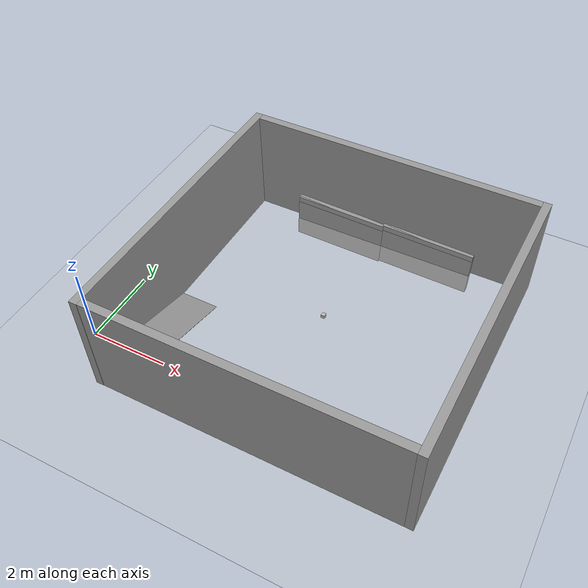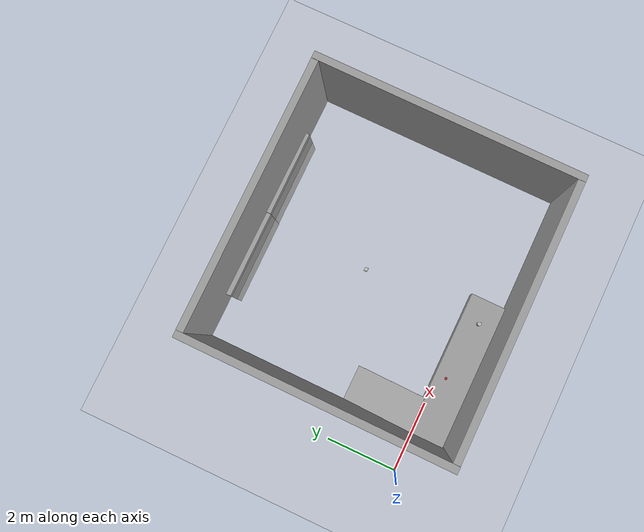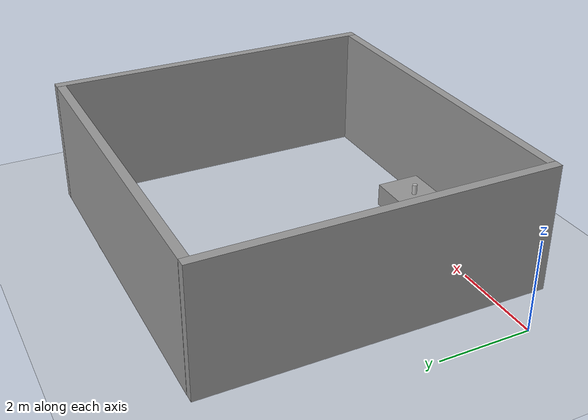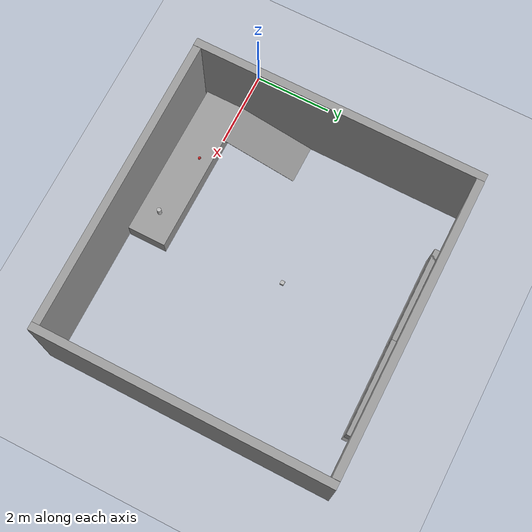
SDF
<sdf version="1.7">
 <world name="default">
  <light name="sun" type="directional">
   <pose>0 0 10 0 -0 0</pose>
   <diffuse>0.8 0.8 0.8 1</diffuse>
   <specular>0.2 0.2 0.2 1</specular>
   <attenuation>
    <range>1000</range>
    <constant>0.9</constant>
    <linear>0.01</linear>
    <quadratic>0.001</quadratic>
   </attenuation>
   <direction>-0.5 0.1 -0.9</direction>
   <spot><inner_angle>0</inner_angle><outer_angle>0</outer_angle><falloff>0</falloff></spot>
  </light>
  <model name="ground_plane">
   <static>1</static>
   <link name="link">
    <collision name="collision">
     <geometry><plane><normal>0 0 1</normal><size>100 100</size></plane></geometry>
     <surface><friction><ode><mu>100</mu><mu2>50</mu2></ode></friction></surface>
    </collision>
    <visual name="visual">
     <cast_shadows>0</cast_shadows>
     <geometry><plane><normal>0 0 1</normal><size>100 100</size></plane></geometry>
     <material>
      <script><uri>file://media/materials/scripts/gazebo.material</uri><name>Gazebo/Grey</name></script>
     </material>
    </visual>
   </link>
  </model>
  <gravity>0 0 -9.8</gravity>
  <magnetic_field>6e-06 2.3e-05 -4.2e-05</magnetic_field>
  <atmosphere type="adiabatic"/>
  <physics type="ode">
   <max_step_size>0.001</max_step_size>
   <real_time_factor>1</real_time_factor>
   <real_time_update_rate>1000</real_time_update_rate>
  </physics>
  <scene><ambient>0.4 0.4 0.4 1</ambient><background>0.7 0.7 0.7 1</background><shadows>1</shadows></scene>
  <audio><device>default</device></audio>
  <spherical_coordinates>
   <surface_model>EARTH_WGS84</surface_model>
   <latitude_deg>0</latitude_deg>
   <longitude_deg>0</longitude_deg>
   <elevation>0</elevation>
   <heading_deg>0</heading_deg>
  </spherical_coordinates>
  <model name="beer">
   <link name="link">
    <pose>0 0 0.115 0 -0 0</pose>
    <inertial>
     <mass>0.39</mass>
     <inertia><ixx>0.00058</ixx><ixy>0</ixy><ixz>0</ixz><iyy>0.00058</iyy><iyz>0</iyz><izz>0.00019</izz></inertia>
    </inertial>
    <collision name="collision">
     <geometry><cylinder><radius>0.055</radius><length>0.23</length></cylinder></geometry>
    </collision>
    <visual name="visual">
     <geometry><cylinder><radius>0.055</radius><length>0.23</length></cylinder></geometry>
     <material>
      <script>
       <uri>model://beer/materials/scripts</uri>
       <uri>model://beer/materials/textures</uri>
       <name>Beer/Diffuse</name>
      </script>
     </material>
    </visual>
   </link>
   <pose>4.57068 -0.401575 0.512954 -6e-05 -7.7e-05 2.20967</pose>
  </model>
  <model name="cricket_ball">
   <link name="link">
    <pose>0 0 0.0375 0 -0 0</pose>
    <inertial>
     <mass>0.1467</mass>
     <inertia>
      <ixx>8.25187e-05</ixx>
      <ixy>0</ixy>
      <ixz>0</ixz>
      <iyy>8.25187e-05</iyy>
      <iyz>0</iyz>
      <izz>8.25187e-05</izz>
     </inertia>
    </inertial>
    <collision name="collision">
     <geometry><sphere><radius>0.0375</radius></sphere></geometry>
     <surface>
      <contact>
       <poissons_ratio>0.347</poissons_ratio>
       <elastic_modulus>8.8e+09</elastic_modulus>
       <ode><kp>100000</kp><kd>100</kd><max_vel>100</max_vel><min_depth>0.001</min_depth></ode>
      </contact>
      <friction>
       <torsional>
        <coefficient>1</coefficient>
        <use_patch_radius>0</use_patch_radius>
        <surface_radius>0.01</surface_radius>
       </torsional>
      </friction>
     </surface>
    </collision>
    <visual name="visual">
     <geometry><sphere><radius>0.0375</radius></sphere></geometry>
     <material>
      <script><uri>file://media/materials/scripts/gazebo.material</uri><name>Gazebo/Red</name></script>
     </material>
    </visual>
    <velocity_decay><linear>0</linear><angular>0.005</angular></velocity_decay>
   </link>
   <pose>2.86024 -0.192828 0.587805 3.07543 -0.052803 -0.932772</pose>
  </model>
  <model name="label_wall_0">
   <pose>2.3839 7.82373 0.019778 -2.10118 1.52018 -2.09374</pose>
   <link name="Wall_0">
    <collision name="Wall_0_Collision">
     <geometry><box><size>1.25 0.15 2.5</size></box></geometry>
     <pose>0 0 1.25 0 -0 0</pose>
    </collision>
    <visual name="Wall_0_Visual">
     <pose>0 0 1.25 0 -0 0</pose>
     <geometry><box><size>1.25 0.15 2.5</size></box></geometry>
     <material>
      <script><uri>file://media/materials/scripts/gazebo.material</uri><name>Gazebo/Grey</name></script>
      <ambient>1 1 1 1</ambient>
     </material>
     <meta><layer>0</layer></meta>
    </visual>
    <pose>-0 -1.7475 0 0 -0 3.14159</pose>
   </link>
   <link name="Wall_1">
    <collision name="Wall_1_Collision">
     <geometry><box><size>0.15 0.15 2.5</size></box></geometry>
     <pose>0 0 1.25 0 -0 0</pose>
    </collision>
    <visual name="Wall_1_Visual">
     <pose>0 0 1.25 0 -0 0</pose>
     <geometry><box><size>0.15 0.15 2.5</size></box></geometry>
     <material>
      <script><uri>file://media/materials/scripts/gazebo.material</uri><name>Gazebo/Grey</name></script>
      <ambient>1 1 1 1</ambient>
     </material>
     <meta><layer>0</layer></meta>
    </visual>
    <pose>-0.55 -1.7475 0 0 -0 0</pose>
   </link>
   <static>1</static>
  </model>
  <model name="grey_wall">
   <static>1</static>
   <link name="link">
    <pose>0 0 1.4 0 -0 0</pose>
    <collision name="collision"><geometry><box><size>7.5 0.2 2.8</size></box></geometry></collision>
    <visual name="visual">
     <cast_shadows>0</cast_shadows>
     <geometry><box><size>7.5 0.2 2.8</size></box></geometry>
     <material>
      <script>
       <uri>model://grey_wall/materials/scripts</uri>
       <uri>model://grey_wall/materials/textures</uri>
       <name>vrc/grey_wall</name>
      </script>
     </material>
    </visual>
   </link>
   <pose>4.93932 6.2718 0 0 -0 0</pose>
  </model>
  <model name="camera">
   <pose>4.68663 3.05019 0.05 0 -0 1.58455</pose>
   <link name="link">
    <inertial>
     <mass>0.1</mass>
     <inertia>
      <ixx>0.000166667</ixx>
      <iyy>0.000166667</iyy>
      <izz>0.000166667</izz>
      <ixy>0</ixy>
      <ixz>0</ixz>
      <iyz>0</iyz>
     </inertia>
    </inertial>
    <collision name="collision"><geometry><box><size>0.1 0.1 0.1</size></box></geometry></collision>
    <visual name="visual"><geometry><box><size>0.1 0.1 0.1</size></box></geometry></visual>
    <sensor name="camera" type="camera">
     <camera>
      <horizontal_fov>1.047</horizontal_fov>
      <image><width>320</width><height>240</height></image>
      <clip><near>0.1</near><far>100</far></clip>
     </camera>
     <always_on>1</always_on>
     <update_rate>30</update_rate>
     <visualize>1</visualize>
     <plugin name="camera_controller" filename="libgazebo_ros_camera.so">
      <robotNamespace>/custom_robot</robotNamespace>
      <camera_name>custom_camera</camera_name>
      <image_topic_name>camera/image_raw</image_topic_name>
      <camera_info_topic_name>camera/camera_info</camera_info_topic_name>
     </plugin>
    </sensor>
   </link>
  </model>
  <model name="label_wall_0_clone">
   <pose>4.88064 7.84317 0.001873 -2.10118 1.52018 -2.09374</pose>
   <link name="Wall_0">
    <collision name="Wall_0_Collision">
     <geometry><box><size>1.25 0.15 2.5</size></box></geometry>
     <pose>0 0 1.25 0 -0 0</pose>
    </collision>
    <visual name="Wall_0_Visual">
     <pose>0 0 1.25 0 -0 0</pose>
     <geometry><box><size>1.25 0.15 2.5</size></box></geometry>
     <material>
      <script><uri>file://media/materials/scripts/gazebo.material</uri><name>Gazebo/Grey</name></script>
      <ambient>1 1 1 1</ambient>
     </material>
     <meta><layer>0</layer></meta>
    </visual>
    <pose>-0 -1.7475 0 0 -0 3.14159</pose>
   </link>
   <link name="Wall_1">
    <collision name="Wall_1_Collision">
     <geometry><box><size>0.15 0.15 2.5</size></box></geometry>
     <pose>0 0 1.25 0 -0 0</pose>
    </collision>
    <visual name="Wall_1_Visual">
     <pose>0 0 1.25 0 -0 0</pose>
     <geometry><box><size>0.15 0.15 2.5</size></box></geometry>
     <material>
      <script><uri>file://media/materials/scripts/gazebo.material</uri><name>Gazebo/Grey</name></script>
      <ambient>1 1 1 1</ambient>
     </material>
     <meta><layer>0</layer></meta>
    </visual>
    <pose>-0.55 -1.7475 0 0 -0 0</pose>
   </link>
   <static>1</static>
  </model>
  <model name="grey_wall_clone">
   <static>1</static>
   <link name="link">
    <pose>0 0 1.4 0 -0 0</pose>
    <collision name="collision"><geometry><box><size>7.5 0.2 2.8</size></box></geometry></collision>
    <visual name="visual">
     <cast_shadows>0</cast_shadows>
     <geometry><box><size>7.5 0.2 2.8</size></box></geometry>
     <material>
      <script>
       <uri>model://grey_wall/materials/scripts</uri>
       <uri>model://grey_wall/materials/textures</uri>
       <name>vrc/grey_wall</name>
      </script>
     </material>
    </visual>
   </link>
   <pose>8.77002 2.62221 0 0 -0 1.56443</pose>
  </model>
  <model name="grey_wall_clone_0">
   <static>1</static>
   <link name="link">
    <pose>0 0 1.4 0 -0 0</pose>
    <collision name="collision"><geometry><box><size>7.5 0.2 2.8</size></box></geometry></collision>
    <visual name="visual">
     <cast_shadows>0</cast_shadows>
     <geometry><box><size>7.5 0.2 2.8</size></box></geometry>
     <material>
      <script>
       <uri>model://grey_wall/materials/scripts</uri>
       <uri>model://grey_wall/materials/textures</uri>
       <name>vrc/grey_wall</name>
      </script>
     </material>
    </visual>
   </link>
   <pose>4.89689 -1.02659 0 0 -0 0</pose>
  </model>
  <model name="grey_wall_clone_clone">
   <static>1</static>
   <link name="link">
    <pose>0 0 1.4 0 -0 0</pose>
    <collision name="collision"><geometry><box><size>7.5 0.2 2.8</size></box></geometry></collision>
    <visual name="visual">
     <cast_shadows>0</cast_shadows>
     <geometry><box><size>7.5 0.2 2.8</size></box></geometry>
     <material>
      <script>
       <uri>model://grey_wall/materials/scripts</uri>
       <uri>model://grey_wall/materials/textures</uri>
       <name>vrc/grey_wall</name>
      </script>
     </material>
    </visual>
   </link>
   <pose>1.06851 2.61746 0 0 -0 1.56443</pose>
  </model>
  <model name="tabel3">
   <link name="link_0">
    <inertial>
     <mass>2.10991</mass>
     <inertia><ixx>0.222089</ixx><ixy>0</ixy><ixz>0</ixz><iyy>3.0209</iyy><iyz>0</iyz><izz>3.15046</izz></inertia>
    </inertial>
    <pose>0.7778 -0.739059 -0.007772 0 -0 0</pose>
    <visual name="visual">
     <geometry><box><size>4.11316 1 0.512955</size></box></geometry>
     <material>
      <lighting>1</lighting>
      <script><uri>file://media/materials/scripts/gazebo.material</uri><name>Gazebo/Grey</name></script>
      <shader type="pixel"/>
      <emissive>0 0 0 1</emissive>
     </material>
    </visual>
    <collision name="collision">
     <geometry><box><size>4.11316 1 0.512955</size></box></geometry>
     <surface>
      <friction>
       <ode><mu>1</mu><mu2>1</mu2><fdir1>0 0 0</fdir1><slip1>0</slip1><slip2>0</slip2></ode>
       <torsional>
        <coefficient>1</coefficient>
        <patch_radius>0</patch_radius>
        <surface_radius>0</surface_radius>
        <use_patch_radius>1</use_patch_radius>
        <ode><slip>0</slip></ode>
       </torsional>
      </friction>
      <bounce><restitution_coefficient>0</restitution_coefficient><threshold>1e+06</threshold></bounce>
      <contact>
       <collide_without_contact>0</collide_without_contact>
       <collide_without_contact_bitmask>1</collide_without_contact_bitmask>
       <collide_bitmask>1</collide_bitmask>
       <ode>
        <soft_cfm>0</soft_cfm>
        <soft_erp>0.2</soft_erp>
        <kp>1e+13</kp>
        <kd>1</kd>
        <max_vel>0.01</max_vel>
        <min_depth>0</min_depth>
       </ode>
       <bullet>
        <split_impulse>1</split_impulse>
        <split_impulse_penetration_threshold>-0.01</split_impulse_penetration_threshold>
        <soft_cfm>0</soft_cfm>
        <soft_erp>0.2</soft_erp>
        <kp>1e+13</kp>
        <kd>1</kd>
       </bullet>
      </contact>
     </surface>
    </collision>
   </link>
   <link name="link_1">
    <inertial>
     <mass>0.0192661</mass>
     <inertia>
      <ixx>0.00674394</ixx>
      <ixy>0</ixy>
      <ixz>0</ixz>
      <iyy>0.00160565</iyy>
      <iyz>0</iyz>
      <izz>0.0083493</izz>
     </inertia>
    </inertial>
    <pose>-0.777797 0.739065 0.007773 -0.249312 0 0</pose>
    <visual name="visual">
     <geometry><box><size>1 2.04949 0.009481</size></box></geometry>
     <material>
      <lighting>1</lighting>
      <script><uri>file://media/materials/scripts/gazebo.material</uri><name>Gazebo/Grey</name></script>
      <shader type="pixel"/>
      <emissive>0 0 0 1</emissive>
     </material>
    </visual>
    <collision name="collision">
     <geometry><box><size>1 2.04949 0.009481</size></box></geometry>
     <surface>
      <friction>
       <ode><mu>1</mu><mu2>1</mu2><fdir1>0 0 0</fdir1><slip1>0</slip1><slip2>0</slip2></ode>
       <torsional>
        <coefficient>1</coefficient>
        <patch_radius>0</patch_radius>
        <surface_radius>0</surface_radius>
        <use_patch_radius>1</use_patch_radius>
        <ode><slip>0</slip></ode>
       </torsional>
      </friction>
      <bounce><restitution_coefficient>0</restitution_coefficient><threshold>1e+06</threshold></bounce>
      <contact>
       <collide_without_contact>0</collide_without_contact>
       <collide_without_contact_bitmask>1</collide_without_contact_bitmask>
       <collide_bitmask>1</collide_bitmask>
       <ode>
        <soft_cfm>0</soft_cfm>
        <soft_erp>0.2</soft_erp>
        <kp>1e+13</kp>
        <kd>1</kd>
        <max_vel>0.01</max_vel>
        <min_depth>0</min_depth>
       </ode>
       <bullet>
        <split_impulse>1</split_impulse>
        <split_impulse_penetration_threshold>-0.01</split_impulse_penetration_threshold>
        <soft_cfm>0</soft_cfm>
        <soft_erp>0.2</soft_erp>
        <kp>1e+13</kp>
        <kd>1</kd>
       </bullet>
      </contact>
     </surface>
    </collision>
   </link>
   <joint name="link_0_JOINT_0" type="fixed">
    <parent>link_0</parent>
    <child>link_1</child>
    <physics>
     <ode><limit><cfm>0</cfm><erp>0.2</erp></limit><suspension><cfm>0</cfm><erp>0.2</erp></suspension></ode>
    </physics>
   </joint>
   <static>0</static>
   <pose>2.4329 0.35357 0.264251 8e-06 0 -0.006365</pose>
  </model>
 </world>
</sdf>
